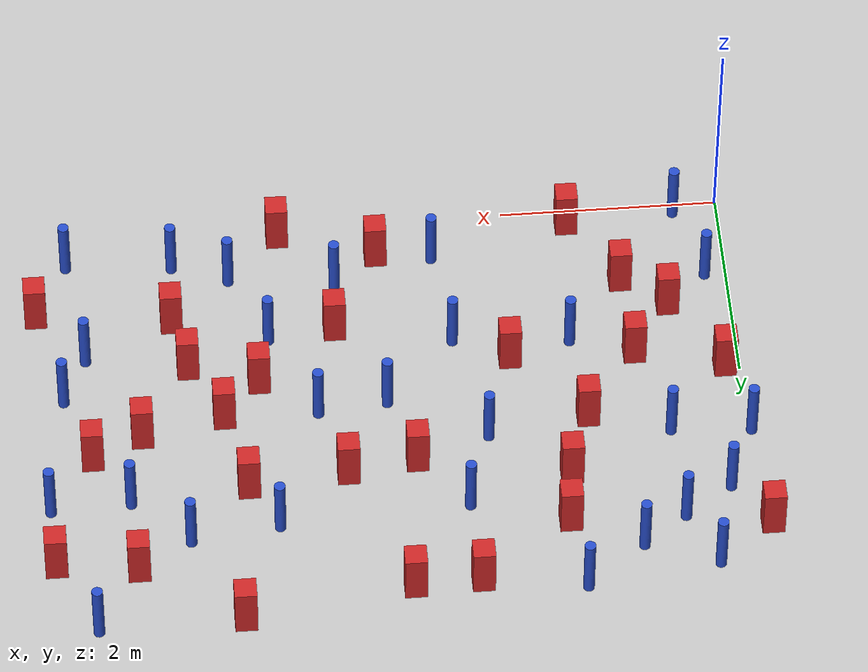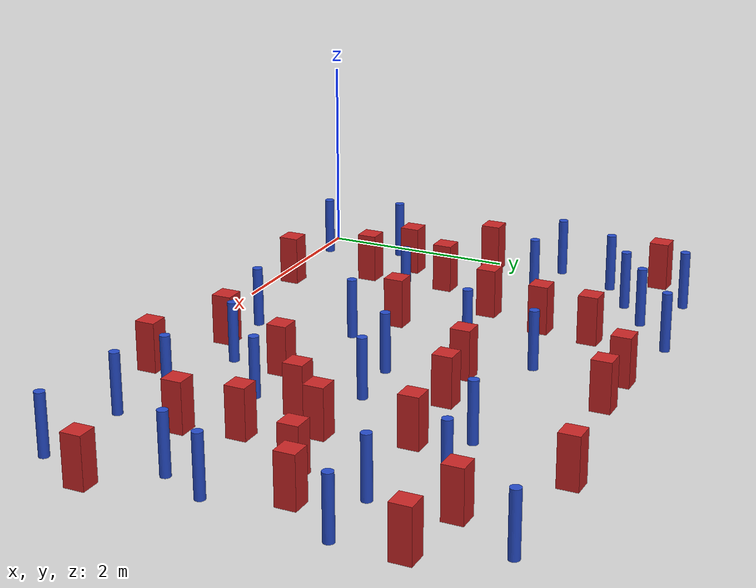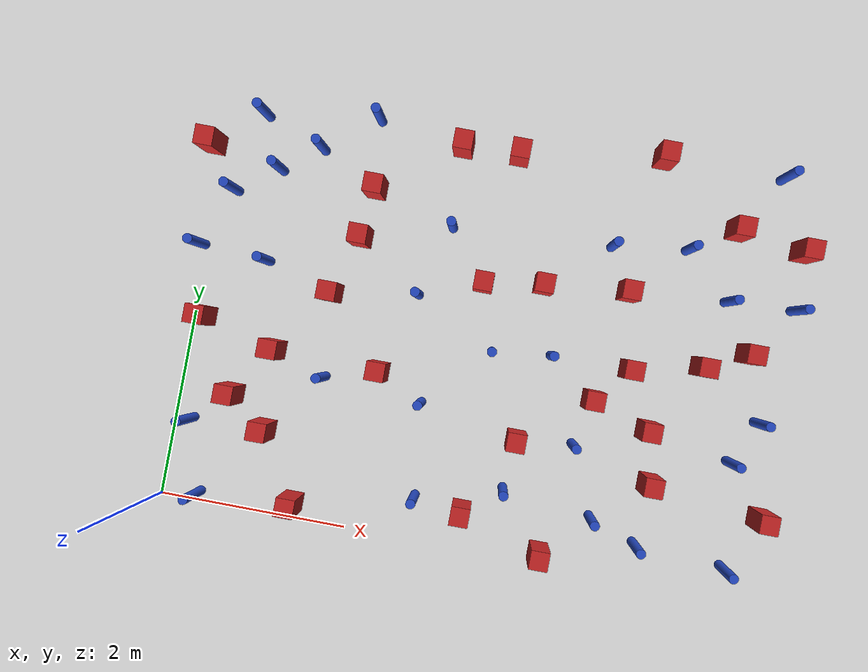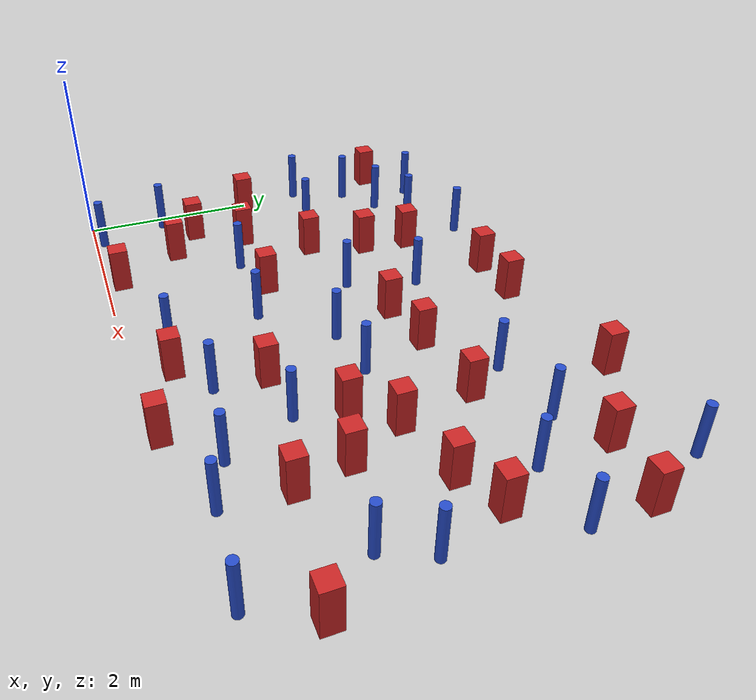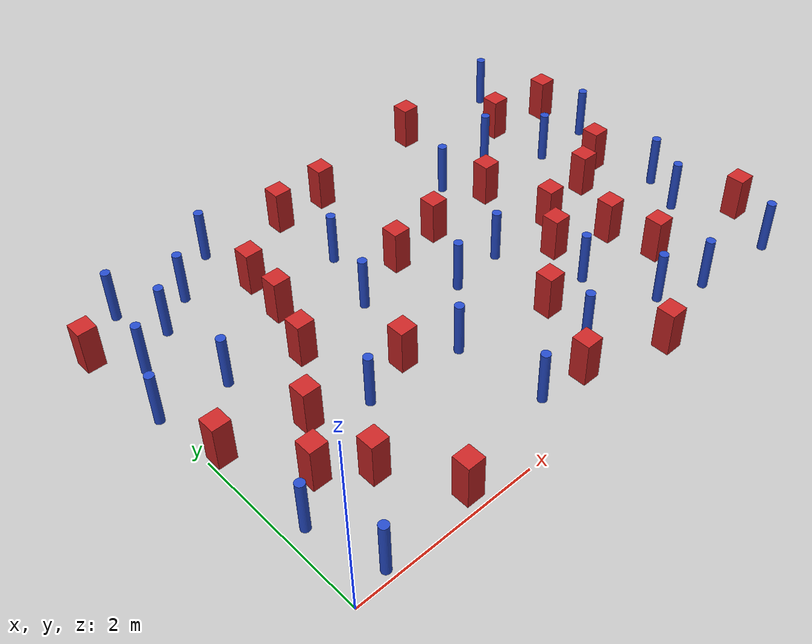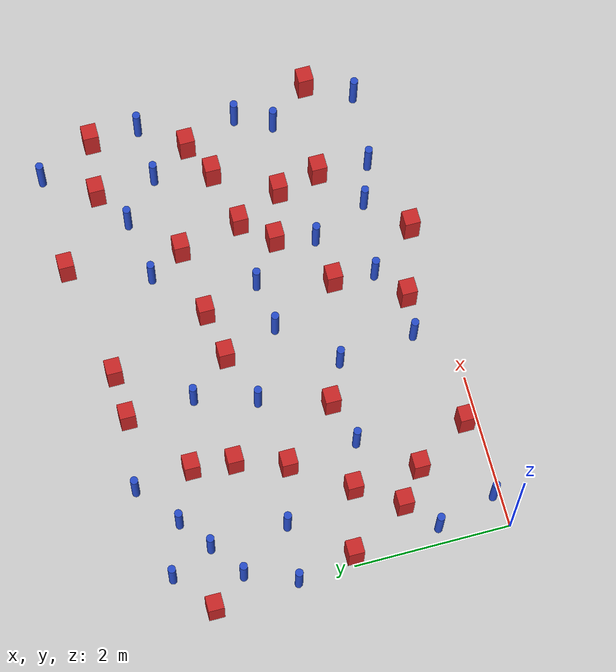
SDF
<sdf version="1.6">
 <model name="dense_89">
  <model name="pole_obstacle6">
   <static>true</static>
   <pose>3.60519064606 0.736603006341 2.88873142074e-08 -9.90536689285e-09 4.60219949002e-07 -1.20965994953e-07</pose>
   <link name="link">
    <pose>0 0 0.3 0 -0 0</pose>
    <inertial>
     <mass>1</mass>
     <inertia><ixx>0.145833</ixx><ixy>0</ixy><ixz>0</ixz><iyy>0.145833</iyy><iyz>0</iyz><izz>0.125</izz></inertia>
    </inertial>
    <collision name="collision">
     <geometry><cylinder><radius>0.05</radius><length>.6</length></cylinder></geometry>
    </collision>
    <visual name="visual">
     <geometry><cylinder><radius>0.05</radius><length>.6</length></cylinder></geometry>
     <material>
      <script><name>Gazebo/Blue</name><uri>file://media/materials/scripts/gazebo.material</uri></script>
     </material>
    </visual>
   </link>
  </model>
  <model name="pole_obstacle24">
   <static>true</static>
   <pose>5.08562448463 3.60974429058 2.88873142074e-08 -9.90536690245e-09 4.6021994898e-07 -1.20965994966e-07</pose>
   <link name="link">
    <pose>0 0 0.3 0 -0 0</pose>
    <inertial>
     <mass>1</mass>
     <inertia><ixx>0.145833</ixx><ixy>0</ixy><ixz>0</ixz><iyy>0.145833</iyy><iyz>0</iyz><izz>0.125</izz></inertia>
    </inertial>
    <collision name="collision">
     <geometry><cylinder><radius>0.05</radius><length>.6</length></cylinder></geometry>
    </collision>
    <visual name="visual">
     <geometry><cylinder><radius>0.05</radius><length>.6</length></cylinder></geometry>
     <material>
      <script><name>Gazebo/Blue</name><uri>file://media/materials/scripts/gazebo.material</uri></script>
     </material>
    </visual>
   </link>
  </model>
  <model name="pole_obstacle28">
   <static>true</static>
   <pose>4.28439598745 3.49828546201 2.88873142074e-08 -9.90536690245e-09 4.6021994898e-07 -1.20965994966e-07</pose>
   <link name="link">
    <pose>0 0 0.3 0 -0 0</pose>
    <inertial>
     <mass>1</mass>
     <inertia><ixx>0.145833</ixx><ixy>0</ixy><ixz>0</ixz><iyy>0.145833</iyy><iyz>0</iyz><izz>0.125</izz></inertia>
    </inertial>
    <collision name="collision">
     <geometry><cylinder><radius>0.05</radius><length>.6</length></cylinder></geometry>
    </collision>
    <visual name="visual">
     <geometry><cylinder><radius>0.05</radius><length>.6</length></cylinder></geometry>
     <material>
      <script><name>Gazebo/Blue</name><uri>file://media/materials/scripts/gazebo.material</uri></script>
     </material>
    </visual>
   </link>
  </model>
  <model name="square_post_obstacle19">
   <static>true</static>
   <pose>0.936425011638 1.75770642628 8.22691968438e-08 7.2212513382e-06 -7.54495500217e-07 2.29674213826e-05</pose>
   <link name="link">
    <pose>0 0 0.25 0 -0 0</pose>
    <inertial>
     <mass>100</mass>
     <inertia>
      <ixx>0.166667</ixx>
      <ixy>0</ixy>
      <ixz>0</ixz>
      <iyy>0.166667</iyy>
      <iyz>0</iyz>
      <izz>0.166667</izz>
     </inertia>
    </inertial>
    <collision name="collision"><geometry><box><size>.2 .2 .5</size></box></geometry></collision>
    <visual name="visual">
     <geometry><box><size>.2 .2 .5</size></box></geometry>
     <material>
      <script><name>Gazebo/Red</name><uri>file://media/materials/scripts/gazebo.material</uri></script>
     </material>
    </visual>
   </link>
  </model>
  <model name="square_post_obstacle26">
   <static>true</static>
   <pose>3.63503763821 2.95785120707 8.22691968438e-08 7.2212513382e-06 -7.54495500217e-07 2.29674213826e-05</pose>
   <link name="link">
    <pose>0 0 0.25 0 -0 0</pose>
    <inertial>
     <mass>100</mass>
     <inertia>
      <ixx>0.166667</ixx>
      <ixy>0</ixy>
      <ixz>0</ixz>
      <iyy>0.166667</iyy>
      <iyz>0</iyz>
      <izz>0.166667</izz>
     </inertia>
    </inertial>
    <collision name="collision"><geometry><box><size>.2 .2 .5</size></box></geometry></collision>
    <visual name="visual">
     <geometry><box><size>.2 .2 .5</size></box></geometry>
     <material>
      <script><name>Gazebo/Red</name><uri>file://media/materials/scripts/gazebo.material</uri></script>
     </material>
    </visual>
   </link>
  </model>
  <model name="square_post_obstacle28">
   <static>true</static>
   <pose>5.003298963 1.63625164232 8.22691968438e-08 7.2212513382e-06 -7.54495500217e-07 2.29674213826e-05</pose>
   <link name="link">
    <pose>0 0 0.25 0 -0 0</pose>
    <inertial>
     <mass>100</mass>
     <inertia>
      <ixx>0.166667</ixx>
      <ixy>0</ixy>
      <ixz>0</ixz>
      <iyy>0.166667</iyy>
      <iyz>0</iyz>
      <izz>0.166667</izz>
     </inertia>
    </inertial>
    <collision name="collision"><geometry><box><size>.2 .2 .5</size></box></geometry></collision>
    <visual name="visual">
     <geometry><box><size>.2 .2 .5</size></box></geometry>
     <material>
      <script><name>Gazebo/Red</name><uri>file://media/materials/scripts/gazebo.material</uri></script>
     </material>
    </visual>
   </link>
  </model>
  <model name="square_post_obstacle29">
   <static>true</static>
   <pose>0.985082252736 0.896909463291 8.22691968438e-08 7.2212513382e-06 -7.54495500217e-07 2.29674213826e-05</pose>
   <link name="link">
    <pose>0 0 0.25 0 -0 0</pose>
    <inertial>
     <mass>100</mass>
     <inertia>
      <ixx>0.166667</ixx>
      <ixy>0</ixy>
      <ixz>0</ixz>
      <iyy>0.166667</iyy>
      <iyz>0</iyz>
      <izz>0.166667</izz>
     </inertia>
    </inertial>
    <collision name="collision"><geometry><box><size>.2 .2 .5</size></box></geometry></collision>
    <visual name="visual">
     <geometry><box><size>.2 .2 .5</size></box></geometry>
     <material>
      <script><name>Gazebo/Red</name><uri>file://media/materials/scripts/gazebo.material</uri></script>
     </material>
    </visual>
   </link>
  </model>
  <model name="pole_obstacle36">
   <static>true</static>
   <pose>0.660144025657 3.65861136991 2.88873142074e-08 -9.90536689636e-09 4.60219948994e-07 -1.20965994958e-07</pose>
   <link name="link">
    <pose>0 0 0.3 0 -0 0</pose>
    <inertial>
     <mass>1</mass>
     <inertia><ixx>0.145833</ixx><ixy>0</ixy><ixz>0</ixz><iyy>0.145833</iyy><iyz>0</iyz><izz>0.125</izz></inertia>
    </inertial>
    <collision name="collision">
     <geometry><cylinder><radius>0.05</radius><length>.6</length></cylinder></geometry>
    </collision>
    <visual name="visual">
     <geometry><cylinder><radius>0.05</radius><length>.6</length></cylinder></geometry>
     <material>
      <script><name>Gazebo/Blue</name><uri>file://media/materials/scripts/gazebo.material</uri></script>
     </material>
    </visual>
   </link>
  </model>
  <model name="pole_obstacle39">
   <static>true</static>
   <pose>5.59773589964 3.13979027691 2.88873142074e-08 -9.90536690245e-09 4.6021994898e-07 -1.20965994966e-07</pose>
   <link name="link">
    <pose>0 0 0.3 0 -0 0</pose>
    <inertial>
     <mass>1</mass>
     <inertia><ixx>0.145833</ixx><ixy>0</ixy><ixz>0</ixz><iyy>0.145833</iyy><iyz>0</iyz><izz>0.125</izz></inertia>
    </inertial>
    <collision name="collision">
     <geometry><cylinder><radius>0.05</radius><length>.6</length></cylinder></geometry>
    </collision>
    <visual name="visual">
     <geometry><cylinder><radius>0.05</radius><length>.6</length></cylinder></geometry>
     <material>
      <script><name>Gazebo/Blue</name><uri>file://media/materials/scripts/gazebo.material</uri></script>
     </material>
    </visual>
   </link>
  </model>
  <model name="pole_obstacle45">
   <static>true</static>
   <pose>1.6062365775 4.37786400295 2.88873142074e-08 -9.90536689852e-09 4.60219948989e-07 -1.2096599496e-07</pose>
   <link name="link">
    <pose>0 0 0.3 0 -0 0</pose>
    <inertial>
     <mass>1</mass>
     <inertia><ixx>0.145833</ixx><ixy>0</ixy><ixz>0</ixz><iyy>0.145833</iyy><iyz>0</iyz><izz>0.125</izz></inertia>
    </inertial>
    <collision name="collision">
     <geometry><cylinder><radius>0.05</radius><length>.6</length></cylinder></geometry>
    </collision>
    <visual name="visual">
     <geometry><cylinder><radius>0.05</radius><length>.6</length></cylinder></geometry>
     <material>
      <script><name>Gazebo/Blue</name><uri>file://media/materials/scripts/gazebo.material</uri></script>
     </material>
    </visual>
   </link>
  </model>
  <model name="square_post_obstacle40">
   <static>true</static>
   <pose>4.70777016315 2.23714081134 8.22691968438e-08 7.2212513382e-06 -7.54495500217e-07 2.29674213826e-05</pose>
   <link name="link">
    <pose>0 0 0.25 0 -0 0</pose>
    <inertial>
     <mass>100</mass>
     <inertia>
      <ixx>0.166667</ixx>
      <ixy>0</ixy>
      <ixz>0</ixz>
      <iyy>0.166667</iyy>
      <iyz>0</iyz>
      <izz>0.166667</izz>
     </inertia>
    </inertial>
    <collision name="collision"><geometry><box><size>.2 .2 .5</size></box></geometry></collision>
    <visual name="visual">
     <geometry><box><size>.2 .2 .5</size></box></geometry>
     <material>
      <script><name>Gazebo/Red</name><uri>file://media/materials/scripts/gazebo.material</uri></script>
     </material>
    </visual>
   </link>
  </model>
  <model name="pole_obstacle58">
   <static>true</static>
   <pose>5.92919814433 1.45998157747 2.88873142074e-08 -9.90536689445e-09 4.60219948999e-07 -1.20965994956e-07</pose>
   <link name="link">
    <pose>0 0 0.3 0 -0 0</pose>
    <inertial>
     <mass>1</mass>
     <inertia><ixx>0.145833</ixx><ixy>0</ixy><ixz>0</ixz><iyy>0.145833</iyy><iyz>0</iyz><izz>0.125</izz></inertia>
    </inertial>
    <collision name="collision">
     <geometry><cylinder><radius>0.05</radius><length>.6</length></cylinder></geometry>
    </collision>
    <visual name="visual">
     <geometry><cylinder><radius>0.05</radius><length>.6</length></cylinder></geometry>
     <material>
      <script><name>Gazebo/Blue</name><uri>file://media/materials/scripts/gazebo.material</uri></script>
     </material>
    </visual>
   </link>
  </model>
  <model name="square_post_obstacle45">
   <static>true</static>
   <pose>4.65703033753 4.52559358497 8.22691968438e-08 7.2212513382e-06 -7.54495500217e-07 2.29674213826e-05</pose>
   <link name="link">
    <pose>0 0 0.25 0 -0 0</pose>
    <inertial>
     <mass>100</mass>
     <inertia>
      <ixx>0.166667</ixx>
      <ixy>0</ixy>
      <ixz>0</ixz>
      <iyy>0.166667</iyy>
      <iyz>0</iyz>
      <izz>0.166667</izz>
     </inertia>
    </inertial>
    <collision name="collision"><geometry><box><size>.2 .2 .5</size></box></geometry></collision>
    <visual name="visual">
     <geometry><box><size>.2 .2 .5</size></box></geometry>
     <material>
      <script><name>Gazebo/Red</name><uri>file://media/materials/scripts/gazebo.material</uri></script>
     </material>
    </visual>
   </link>
  </model>
  <model name="pole_obstacle61">
   <static>true</static>
   <pose>2.57173790364 3.38650035701 2.88873142074e-08 -9.90536690232e-09 4.6021994898e-07 -1.20965994968e-07</pose>
   <link name="link">
    <pose>0 0 0.3 0 -0 0</pose>
    <inertial>
     <mass>1</mass>
     <inertia><ixx>0.145833</ixx><ixy>0</ixy><ixz>0</ixz><iyy>0.145833</iyy><iyz>0</iyz><izz>0.125</izz></inertia>
    </inertial>
    <collision name="collision">
     <geometry><cylinder><radius>0.05</radius><length>.6</length></cylinder></geometry>
    </collision>
    <visual name="visual">
     <geometry><cylinder><radius>0.05</radius><length>.6</length></cylinder></geometry>
     <material>
      <script><name>Gazebo/Blue</name><uri>file://media/materials/scripts/gazebo.material</uri></script>
     </material>
    </visual>
   </link>
  </model>
  <model name="pole_obstacle69">
   <static>true</static>
   <pose>-0.0328800915591 2.72272971324 2.88873142074e-08 -9.90536692535e-09 4.60219948925e-07 -1.2096599499e-07</pose>
   <link name="link">
    <pose>0 0 0.3 0 -0 0</pose>
    <inertial>
     <mass>1</mass>
     <inertia><ixx>0.145833</ixx><ixy>0</ixy><ixz>0</ixz><iyy>0.145833</iyy><iyz>0</iyz><izz>0.125</izz></inertia>
    </inertial>
    <collision name="collision">
     <geometry><cylinder><radius>0.05</radius><length>.6</length></cylinder></geometry>
    </collision>
    <visual name="visual">
     <geometry><cylinder><radius>0.05</radius><length>.6</length></cylinder></geometry>
     <material>
      <script><name>Gazebo/Blue</name><uri>file://media/materials/scripts/gazebo.material</uri></script>
     </material>
    </visual>
   </link>
  </model>
  <model name="pole_obstacle75">
   <static>true</static>
   <pose>6.14746203454 1.92521920841 2.88873142074e-08 -9.90536689445e-09 4.60219948999e-07 -1.20965994956e-07</pose>
   <link name="link">
    <pose>0 0 0.3 0 -0 0</pose>
    <inertial>
     <mass>1</mass>
     <inertia><ixx>0.145833</ixx><ixy>0</ixy><ixz>0</ixz><iyy>0.145833</iyy><iyz>0</iyz><izz>0.125</izz></inertia>
    </inertial>
    <collision name="collision">
     <geometry><cylinder><radius>0.05</radius><length>.6</length></cylinder></geometry>
    </collision>
    <visual name="visual">
     <geometry><cylinder><radius>0.05</radius><length>.6</length></cylinder></geometry>
     <material>
      <script><name>Gazebo/Blue</name><uri>file://media/materials/scripts/gazebo.material</uri></script>
     </material>
    </visual>
   </link>
  </model>
  <model name="pole_obstacle82">
   <static>true</static>
   <pose>6.06059148059 0.338739686937 2.88873142074e-08 -9.90536689981e-09 4.60219948986e-07 -1.20965994962e-07</pose>
   <link name="link">
    <pose>0 0 0.3 0 -0 0</pose>
    <inertial>
     <mass>1</mass>
     <inertia><ixx>0.145833</ixx><ixy>0</ixy><ixz>0</ixz><iyy>0.145833</iyy><iyz>0</iyz><izz>0.125</izz></inertia>
    </inertial>
    <collision name="collision">
     <geometry><cylinder><radius>0.05</radius><length>.6</length></cylinder></geometry>
    </collision>
    <visual name="visual">
     <geometry><cylinder><radius>0.05</radius><length>.6</length></cylinder></geometry>
     <material>
      <script><name>Gazebo/Blue</name><uri>file://media/materials/scripts/gazebo.material</uri></script>
     </material>
    </visual>
   </link>
  </model>
  <model name="square_post_obstacle82">
   <static>true</static>
   <pose>3.00604380478 2.8595958126 8.22691968438e-08 7.2212513382e-06 -7.54495500217e-07 2.29674213826e-05</pose>
   <link name="link">
    <pose>0 0 0.25 0 -0 0</pose>
    <inertial>
     <mass>100</mass>
     <inertia>
      <ixx>0.166667</ixx>
      <ixy>0</ixy>
      <ixz>0</ixz>
      <iyy>0.166667</iyy>
      <iyz>0</iyz>
      <izz>0.166667</izz>
     </inertia>
    </inertial>
    <collision name="collision"><geometry><box><size>.2 .2 .5</size></box></geometry></collision>
    <visual name="visual">
     <geometry><box><size>.2 .2 .5</size></box></geometry>
     <material>
      <script><name>Gazebo/Red</name><uri>file://media/materials/scripts/gazebo.material</uri></script>
     </material>
    </visual>
   </link>
  </model>
  <model name="pole_obstacle93">
   <static>true</static>
   <pose>0.192687869194 0.868994095143 2.88873142074e-08 -9.90536690341e-09 4.60219948977e-07 -1.20965994968e-07</pose>
   <link name="link">
    <pose>0 0 0.3 0 -0 0</pose>
    <inertial>
     <mass>1</mass>
     <inertia><ixx>0.145833</ixx><ixy>0</ixy><ixz>0</ixz><iyy>0.145833</iyy><iyz>0</iyz><izz>0.125</izz></inertia>
    </inertial>
    <collision name="collision">
     <geometry><cylinder><radius>0.05</radius><length>.6</length></cylinder></geometry>
    </collision>
    <visual name="visual">
     <geometry><cylinder><radius>0.05</radius><length>.6</length></cylinder></geometry>
     <material>
      <script><name>Gazebo/Blue</name><uri>file://media/materials/scripts/gazebo.material</uri></script>
     </material>
    </visual>
   </link>
  </model>
  <model name="pole_obstacle101">
   <static>true</static>
   <pose>1.5087841471 1.5622347193 2.88873142074e-08 -9.90536689672e-09 4.60219948993e-07 -1.20965994959e-07</pose>
   <link name="link">
    <pose>0 0 0.3 0 -0 0</pose>
    <inertial>
     <mass>1</mass>
     <inertia><ixx>0.145833</ixx><ixy>0</ixy><ixz>0</ixz><iyy>0.145833</iyy><iyz>0</iyz><izz>0.125</izz></inertia>
    </inertial>
    <collision name="collision">
     <geometry><cylinder><radius>0.05</radius><length>.6</length></cylinder></geometry>
    </collision>
    <visual name="visual">
     <geometry><cylinder><radius>0.05</radius><length>.6</length></cylinder></geometry>
     <material>
      <script><name>Gazebo/Blue</name><uri>file://media/materials/scripts/gazebo.material</uri></script>
     </material>
    </visual>
   </link>
  </model>
  <model name="square_post_obstacle97">
   <static>true</static>
   <pose>1.41581463398 0.179686824386 8.22691968438e-08 7.2212513382e-06 -7.54495500217e-07 2.29674213826e-05</pose>
   <link name="link">
    <pose>0 0 0.25 0 -0 0</pose>
    <inertial>
     <mass>100</mass>
     <inertia>
      <ixx>0.166667</ixx>
      <ixy>0</ixy>
      <ixz>0</ixz>
      <iyy>0.166667</iyy>
      <iyz>0</iyz>
      <izz>0.166667</izz>
     </inertia>
    </inertial>
    <collision name="collision"><geometry><box><size>.2 .2 .5</size></box></geometry></collision>
    <visual name="visual">
     <geometry><box><size>.2 .2 .5</size></box></geometry>
     <material>
      <script><name>Gazebo/Red</name><uri>file://media/materials/scripts/gazebo.material</uri></script>
     </material>
    </visual>
   </link>
  </model>
  <model name="square_post_obstacle104">
   <static>true</static>
   <pose>1.63500351227 3.10330486196 8.22691968438e-08 7.2212513382e-06 -7.54495500217e-07 2.29674213826e-05</pose>
   <link name="link">
    <pose>0 0 0.25 0 -0 0</pose>
    <inertial>
     <mass>100</mass>
     <inertia>
      <ixx>0.166667</ixx>
      <ixy>0</ixy>
      <ixz>0</ixz>
      <iyy>0.166667</iyy>
      <iyz>0</iyz>
      <izz>0.166667</izz>
     </inertia>
    </inertial>
    <collision name="collision"><geometry><box><size>.2 .2 .5</size></box></geometry></collision>
    <visual name="visual">
     <geometry><box><size>.2 .2 .5</size></box></geometry>
     <material>
      <script><name>Gazebo/Red</name><uri>file://media/materials/scripts/gazebo.material</uri></script>
     </material>
    </visual>
   </link>
  </model>
  <model name="square_post_obstacle105">
   <static>true</static>
   <pose>2.53308196435 4.25347665867 8.22691968438e-08 7.2212513382e-06 -7.54495500217e-07 2.29674213826e-05</pose>
   <link name="link">
    <pose>0 0 0.25 0 -0 0</pose>
    <inertial>
     <mass>100</mass>
     <inertia>
      <ixx>0.166667</ixx>
      <ixy>0</ixy>
      <ixz>0</ixz>
      <iyy>0.166667</iyy>
      <iyz>0</iyz>
      <izz>0.166667</izz>
     </inertia>
    </inertial>
    <collision name="collision"><geometry><box><size>.2 .2 .5</size></box></geometry></collision>
    <visual name="visual">
     <geometry><box><size>.2 .2 .5</size></box></geometry>
     <material>
      <script><name>Gazebo/Red</name><uri>file://media/materials/scripts/gazebo.material</uri></script>
     </material>
    </visual>
   </link>
  </model>
  <model name="square_post_obstacle107">
   <static>true</static>
   <pose>3.20530987433 0.423398128547 8.22691968438e-08 7.2212513382e-06 -7.54495500217e-07 2.29674213826e-05</pose>
   <link name="link">
    <pose>0 0 0.25 0 -0 0</pose>
    <inertial>
     <mass>100</mass>
     <inertia>
      <ixx>0.166667</ixx>
      <ixy>0</ixy>
      <ixz>0</ixz>
      <iyy>0.166667</iyy>
      <iyz>0</iyz>
      <izz>0.166667</izz>
     </inertia>
    </inertial>
    <collision name="collision"><geometry><box><size>.2 .2 .5</size></box></geometry></collision>
    <visual name="visual">
     <geometry><box><size>.2 .2 .5</size></box></geometry>
     <material>
      <script><name>Gazebo/Red</name><uri>file://media/materials/scripts/gazebo.material</uri></script>
     </material>
    </visual>
   </link>
  </model>
  <model name="pole_obstacle113">
   <static>true</static>
   <pose>3.85451385964 2.22927541365 2.88873142074e-08 -9.90536690232e-09 4.6021994898e-07 -1.20965994968e-07</pose>
   <link name="link">
    <pose>0 0 0.3 0 -0 0</pose>
    <inertial>
     <mass>1</mass>
     <inertia><ixx>0.145833</ixx><ixy>0</ixy><ixz>0</ixz><iyy>0.145833</iyy><iyz>0</iyz><izz>0.125</izz></inertia>
    </inertial>
    <collision name="collision">
     <geometry><cylinder><radius>0.05</radius><length>.6</length></cylinder></geometry>
    </collision>
    <visual name="visual">
     <geometry><cylinder><radius>0.05</radius><length>.6</length></cylinder></geometry>
     <material>
      <script><name>Gazebo/Blue</name><uri>file://media/materials/scripts/gazebo.material</uri></script>
     </material>
    </visual>
   </link>
  </model>
  <model name="square_post_obstacle113">
   <static>true</static>
   <pose>2.07433042967 1.73295867308 8.22691968438e-08 7.2212513382e-06 -7.54495500217e-07 2.29674213826e-05</pose>
   <link name="link">
    <pose>0 0 0.25 0 -0 0</pose>
    <inertial>
     <mass>100</mass>
     <inertia>
      <ixx>0.166667</ixx>
      <ixy>0</ixy>
      <ixz>0</ixz>
      <iyy>0.166667</iyy>
      <iyz>0</iyz>
      <izz>0.166667</izz>
     </inertia>
    </inertial>
    <collision name="collision"><geometry><box><size>.2 .2 .5</size></box></geometry></collision>
    <visual name="visual">
     <geometry><box><size>.2 .2 .5</size></box></geometry>
     <material>
      <script><name>Gazebo/Red</name><uri>file://media/materials/scripts/gazebo.material</uri></script>
     </material>
    </visual>
   </link>
  </model>
  <model name="square_post_obstacle118">
   <static>true</static>
   <pose>5.56519952009 3.90966847611 8.22691968438e-08 7.2212513382e-06 -7.54495500217e-07 2.29674213826e-05</pose>
   <link name="link">
    <pose>0 0 0.25 0 -0 0</pose>
    <inertial>
     <mass>100</mass>
     <inertia>
      <ixx>0.166667</ixx>
      <ixy>0</ixy>
      <ixz>0</ixz>
      <iyy>0.166667</iyy>
      <iyz>0</iyz>
      <izz>0.166667</izz>
     </inertia>
    </inertial>
    <collision name="collision"><geometry><box><size>.2 .2 .5</size></box></geometry></collision>
    <visual name="visual">
     <geometry><box><size>.2 .2 .5</size></box></geometry>
     <material>
      <script><name>Gazebo/Red</name><uri>file://media/materials/scripts/gazebo.material</uri></script>
     </material>
    </visual>
   </link>
  </model>
  <model name="square_post_obstacle121">
   <static>true</static>
   <pose>0.577831267998 1.21331056739 8.22691968438e-08 7.2212513382e-06 -7.54495500217e-07 2.29674213826e-05</pose>
   <link name="link">
    <pose>0 0 0.25 0 -0 0</pose>
    <inertial>
     <mass>100</mass>
     <inertia>
      <ixx>0.166667</ixx>
      <ixy>0</ixy>
      <ixz>0</ixz>
      <iyy>0.166667</iyy>
      <iyz>0</iyz>
      <izz>0.166667</izz>
     </inertia>
    </inertial>
    <collision name="collision"><geometry><box><size>.2 .2 .5</size></box></geometry></collision>
    <visual name="visual">
     <geometry><box><size>.2 .2 .5</size></box></geometry>
     <material>
      <script><name>Gazebo/Red</name><uri>file://media/materials/scripts/gazebo.material</uri></script>
     </material>
    </visual>
   </link>
  </model>
  <model name="pole_obstacle122">
   <static>true</static>
   <pose>4.25042388028 1.34007896724 2.88873142074e-08 -9.90536689445e-09 4.60219948999e-07 -1.20965994956e-07</pose>
   <link name="link">
    <pose>0 0 0.3 0 -0 0</pose>
    <inertial>
     <mass>1</mass>
     <inertia><ixx>0.145833</ixx><ixy>0</ixy><ixz>0</ixz><iyy>0.145833</iyy><iyz>0</iyz><izz>0.125</izz></inertia>
    </inertial>
    <collision name="collision">
     <geometry><cylinder><radius>0.05</radius><length>.6</length></cylinder></geometry>
    </collision>
    <visual name="visual">
     <geometry><cylinder><radius>0.05</radius><length>.6</length></cylinder></geometry>
     <material>
      <script><name>Gazebo/Blue</name><uri>file://media/materials/scripts/gazebo.material</uri></script>
     </material>
    </visual>
   </link>
  </model>
  <model name="pole_obstacle125">
   <static>true</static>
   <pose>2.57698035668 1.48035058824 2.88873142074e-08 -9.90536689395e-09 4.60219949e-07 -1.20965994953e-07</pose>
   <link name="link">
    <pose>0 0 0.3 0 -0 0</pose>
    <inertial>
     <mass>1</mass>
     <inertia><ixx>0.145833</ixx><ixy>0</ixy><ixz>0</ixz><iyy>0.145833</iyy><iyz>0</iyz><izz>0.125</izz></inertia>
    </inertial>
    <collision name="collision">
     <geometry><cylinder><radius>0.05</radius><length>.6</length></cylinder></geometry>
    </collision>
    <visual name="visual">
     <geometry><cylinder><radius>0.05</radius><length>.6</length></cylinder></geometry>
     <material>
      <script><name>Gazebo/Blue</name><uri>file://media/materials/scripts/gazebo.material</uri></script>
     </material>
    </visual>
   </link>
  </model>
  <model name="pole_obstacle126">
   <static>true</static>
   <pose>5.08772715777 0.414674503026 2.88873142074e-08 -9.90536689981e-09 4.60219948986e-07 -1.20965994962e-07</pose>
   <link name="link">
    <pose>0 0 0.3 0 -0 0</pose>
    <inertial>
     <mass>1</mass>
     <inertia><ixx>0.145833</ixx><ixy>0</ixy><ixz>0</ixz><iyy>0.145833</iyy><iyz>0</iyz><izz>0.125</izz></inertia>
    </inertial>
    <collision name="collision">
     <geometry><cylinder><radius>0.05</radius><length>.6</length></cylinder></geometry>
    </collision>
    <visual name="visual">
     <geometry><cylinder><radius>0.05</radius><length>.6</length></cylinder></geometry>
     <material>
      <script><name>Gazebo/Blue</name><uri>file://media/materials/scripts/gazebo.material</uri></script>
     </material>
    </visual>
   </link>
  </model>
  <model name="square_post_obstacle126">
   <static>true</static>
   <pose>5.12427239771 1.07957800826 8.22691968438e-08 7.2212513382e-06 -7.54495500217e-07 2.29674213826e-05</pose>
   <link name="link">
    <pose>0 0 0.25 0 -0 0</pose>
    <inertial>
     <mass>100</mass>
     <inertia>
      <ixx>0.166667</ixx>
      <ixy>0</ixy>
      <ixz>0</ixz>
      <iyy>0.166667</iyy>
      <iyz>0</iyz>
      <izz>0.166667</izz>
     </inertia>
    </inertial>
    <collision name="collision"><geometry><box><size>.2 .2 .5</size></box></geometry></collision>
    <visual name="visual">
     <geometry><box><size>.2 .2 .5</size></box></geometry>
     <material>
      <script><name>Gazebo/Red</name><uri>file://media/materials/scripts/gazebo.material</uri></script>
     </material>
    </visual>
   </link>
  </model>
  <model name="square_post_obstacle127">
   <static>true</static>
   <pose>6.36009892333 0.924572274981 8.22691968438e-08 7.2212513382e-06 -7.54495500217e-07 2.29674213826e-05</pose>
   <link name="link">
    <pose>0 0 0.25 0 -0 0</pose>
    <inertial>
     <mass>100</mass>
     <inertia>
      <ixx>0.166667</ixx>
      <ixy>0</ixy>
      <ixz>0</ixz>
      <iyy>0.166667</iyy>
      <iyz>0</iyz>
      <izz>0.166667</izz>
     </inertia>
    </inertial>
    <collision name="collision"><geometry><box><size>.2 .2 .5</size></box></geometry></collision>
    <visual name="visual">
     <geometry><box><size>.2 .2 .5</size></box></geometry>
     <material>
      <script><name>Gazebo/Red</name><uri>file://media/materials/scripts/gazebo.material</uri></script>
     </material>
    </visual>
   </link>
  </model>
  <model name="square_post_obstacle133">
   <static>true</static>
   <pose>4.53484420774 3.05019987005 8.22691968438e-08 7.2212513382e-06 -7.54495500217e-07 2.29674213826e-05</pose>
   <link name="link">
    <pose>0 0 0.25 0 -0 0</pose>
    <inertial>
     <mass>100</mass>
     <inertia>
      <ixx>0.166667</ixx>
      <ixy>0</ixy>
      <ixz>0</ixz>
      <iyy>0.166667</iyy>
      <iyz>0</iyz>
      <izz>0.166667</izz>
     </inertia>
    </inertial>
    <collision name="collision"><geometry><box><size>.2 .2 .5</size></box></geometry></collision>
    <visual name="visual">
     <geometry><box><size>.2 .2 .5</size></box></geometry>
     <material>
      <script><name>Gazebo/Red</name><uri>file://media/materials/scripts/gazebo.material</uri></script>
     </material>
    </visual>
   </link>
  </model>
  <model name="pole_obstacle145">
   <static>true</static>
   <pose>0.221304937407 3.35469868747 2.88873142074e-08 -9.90536692545e-09 4.60219948925e-07 -1.2096599499e-07</pose>
   <link name="link">
    <pose>0 0 0.3 0 -0 0</pose>
    <inertial>
     <mass>1</mass>
     <inertia><ixx>0.145833</ixx><ixy>0</ixy><ixz>0</ixz><iyy>0.145833</iyy><iyz>0</iyz><izz>0.125</izz></inertia>
    </inertial>
    <collision name="collision">
     <geometry><cylinder><radius>0.05</radius><length>.6</length></cylinder></geometry>
    </collision>
    <visual name="visual">
     <geometry><cylinder><radius>0.05</radius><length>.6</length></cylinder></geometry>
     <material>
      <script><name>Gazebo/Blue</name><uri>file://media/materials/scripts/gazebo.material</uri></script>
     </material>
    </visual>
   </link>
  </model>
  <model name="pole_obstacle149">
   <static>true</static>
   <pose>5.95348957436 4.54256101679 2.88873142074e-08 -9.90536690842e-09 4.60219948965e-07 -1.20965994976e-07</pose>
   <link name="link">
    <pose>0 0 0.3 0 -0 0</pose>
    <inertial>
     <mass>1</mass>
     <inertia><ixx>0.145833</ixx><ixy>0</ixy><ixz>0</ixz><iyy>0.145833</iyy><iyz>0</iyz><izz>0.125</izz></inertia>
    </inertial>
    <collision name="collision">
     <geometry><cylinder><radius>0.05</radius><length>.6</length></cylinder></geometry>
    </collision>
    <visual name="visual">
     <geometry><cylinder><radius>0.05</radius><length>.6</length></cylinder></geometry>
     <material>
      <script><name>Gazebo/Blue</name><uri>file://media/materials/scripts/gazebo.material</uri></script>
     </material>
    </visual>
   </link>
  </model>
  <model name="pole_obstacle150">
   <static>true</static>
   <pose>2.34034649585 2.61218084126 2.88873142074e-08 -9.90536690232e-09 4.6021994898e-07 -1.20965994968e-07</pose>
   <link name="link">
    <pose>0 0 0.3 0 -0 0</pose>
    <inertial>
     <mass>1</mass>
     <inertia><ixx>0.145833</ixx><ixy>0</ixy><ixz>0</ixz><iyy>0.145833</iyy><iyz>0</iyz><izz>0.125</izz></inertia>
    </inertial>
    <collision name="collision">
     <geometry><cylinder><radius>0.05</radius><length>.6</length></cylinder></geometry>
    </collision>
    <visual name="visual">
     <geometry><cylinder><radius>0.05</radius><length>.6</length></cylinder></geometry>
     <material>
      <script><name>Gazebo/Blue</name><uri>file://media/materials/scripts/gazebo.material</uri></script>
     </material>
    </visual>
   </link>
  </model>
  <model name="square_post_obstacle149">
   <static>true</static>
   <pose>1.42846910395 2.4637830657 8.22691968438e-08 7.2212513382e-06 -7.54495500217e-07 2.29674213826e-05</pose>
   <link name="link">
    <pose>0 0 0.25 0 -0 0</pose>
    <inertial>
     <mass>100</mass>
     <inertia>
      <ixx>0.166667</ixx>
      <ixy>0</ixy>
      <ixz>0</ixz>
      <iyy>0.166667</iyy>
      <iyz>0</iyz>
      <izz>0.166667</izz>
     </inertia>
    </inertial>
    <collision name="collision"><geometry><box><size>.2 .2 .5</size></box></geometry></collision>
    <visual name="visual">
     <geometry><box><size>.2 .2 .5</size></box></geometry>
     <material>
      <script><name>Gazebo/Red</name><uri>file://media/materials/scripts/gazebo.material</uri></script>
     </material>
    </visual>
   </link>
  </model>
  <model name="pole_obstacle153">
   <static>true</static>
   <pose>0.692997042975 2.67274100265 2.88873142074e-08 -9.90536689636e-09 4.60219948994e-07 -1.20965994958e-07</pose>
   <link name="link">
    <pose>0 0 0.3 0 -0 0</pose>
    <inertial>
     <mass>1</mass>
     <inertia><ixx>0.145833</ixx><ixy>0</ixy><ixz>0</ixz><iyy>0.145833</iyy><iyz>0</iyz><izz>0.125</izz></inertia>
    </inertial>
    <collision name="collision">
     <geometry><cylinder><radius>0.05</radius><length>.6</length></cylinder></geometry>
    </collision>
    <visual name="visual">
     <geometry><cylinder><radius>0.05</radius><length>.6</length></cylinder></geometry>
     <material>
      <script><name>Gazebo/Blue</name><uri>file://media/materials/scripts/gazebo.material</uri></script>
     </material>
    </visual>
   </link>
  </model>
  <model name="square_post_obstacle163">
   <static>true</static>
   <pose>1.69636079329 3.64239355805 8.22691968438e-08 7.2212513382e-06 -7.54495500217e-07 2.29674213826e-05</pose>
   <link name="link">
    <pose>0 0 0.25 0 -0 0</pose>
    <inertial>
     <mass>100</mass>
     <inertia>
      <ixx>0.166667</ixx>
      <ixy>0</ixy>
      <ixz>0</ixz>
      <iyy>0.166667</iyy>
      <iyz>0</iyz>
      <izz>0.166667</izz>
     </inertia>
    </inertial>
    <collision name="collision"><geometry><box><size>.2 .2 .5</size></box></geometry></collision>
    <visual name="visual">
     <geometry><box><size>.2 .2 .5</size></box></geometry>
     <material>
      <script><name>Gazebo/Red</name><uri>file://media/materials/scripts/gazebo.material</uri></script>
     </material>
    </visual>
   </link>
  </model>
  <model name="pole_obstacle166">
   <static>true</static>
   <pose>3.22345594826 2.15547379451 2.88873142074e-08 -9.90536690232e-09 4.6021994898e-07 -1.20965994968e-07</pose>
   <link name="link">
    <pose>0 0 0.3 0 -0 0</pose>
    <inertial>
     <mass>1</mass>
     <inertia><ixx>0.145833</ixx><ixy>0</ixy><ixz>0</ixz><iyy>0.145833</iyy><iyz>0</iyz><izz>0.125</izz></inertia>
    </inertial>
    <collision name="collision">
     <geometry><cylinder><radius>0.05</radius><length>.6</length></cylinder></geometry>
    </collision>
    <visual name="visual">
     <geometry><cylinder><radius>0.05</radius><length>.6</length></cylinder></geometry>
     <material>
      <script><name>Gazebo/Blue</name><uri>file://media/materials/scripts/gazebo.material</uri></script>
     </material>
    </visual>
   </link>
  </model>
  <model name="square_post_obstacle164">
   <static>true</static>
   <pose>3.64274571235 1.27791009696 8.22691968438e-08 7.2212513382e-06 -7.54495500217e-07 2.29674213826e-05</pose>
   <link name="link">
    <pose>0 0 0.25 0 -0 0</pose>
    <inertial>
     <mass>100</mass>
     <inertia>
      <ixx>0.166667</ixx>
      <ixy>0</ixy>
      <ixz>0</ixz>
      <iyy>0.166667</iyy>
      <iyz>0</iyz>
      <izz>0.166667</izz>
     </inertia>
    </inertial>
    <collision name="collision"><geometry><box><size>.2 .2 .5</size></box></geometry></collision>
    <visual name="visual">
     <geometry><box><size>.2 .2 .5</size></box></geometry>
     <material>
      <script><name>Gazebo/Red</name><uri>file://media/materials/scripts/gazebo.material</uri></script>
     </material>
    </visual>
   </link>
  </model>
  <model name="square_post_obstacle168">
   <static>true</static>
   <pose>3.13697117188 4.27471657675 8.22691968438e-08 7.2212513382e-06 -7.54495500217e-07 2.29674213826e-05</pose>
   <link name="link">
    <pose>0 0 0.25 0 -0 0</pose>
    <inertial>
     <mass>100</mass>
     <inertia>
      <ixx>0.166667</ixx>
      <ixy>0</ixy>
      <ixz>0</ixz>
      <iyy>0.166667</iyy>
      <iyz>0</iyz>
      <izz>0.166667</izz>
     </inertia>
    </inertial>
    <collision name="collision"><geometry><box><size>.2 .2 .5</size></box></geometry></collision>
    <visual name="visual">
     <geometry><box><size>.2 .2 .5</size></box></geometry>
     <material>
      <script><name>Gazebo/Red</name><uri>file://media/materials/scripts/gazebo.material</uri></script>
     </material>
    </visual>
   </link>
  </model>
  <model name="square_post_obstacle172">
   <static>true</static>
   <pose>4.09650303265 0.130672828662 8.22691968438e-08 7.2212513382e-06 -7.54495500217e-07 2.29674213826e-05</pose>
   <link name="link">
    <pose>0 0 0.25 0 -0 0</pose>
    <inertial>
     <mass>100</mass>
     <inertia>
      <ixx>0.166667</ixx>
      <ixy>0</ixy>
      <ixz>0</ixz>
      <iyy>0.166667</iyy>
      <iyz>0</iyz>
      <izz>0.166667</izz>
     </inertia>
    </inertial>
    <collision name="collision"><geometry><box><size>.2 .2 .5</size></box></geometry></collision>
    <visual name="visual">
     <geometry><box><size>.2 .2 .5</size></box></geometry>
     <material>
      <script><name>Gazebo/Red</name><uri>file://media/materials/scripts/gazebo.material</uri></script>
     </material>
    </visual>
   </link>
  </model>
  <model name="pole_obstacle177">
   <static>true</static>
   <pose>1.06390089894 3.95582429751 2.88873142074e-08 -9.90536689669e-09 4.60219948993e-07 -1.2096599496e-07</pose>
   <link name="link">
    <pose>0 0 0.3 0 -0 0</pose>
    <inertial>
     <mass>1</mass>
     <inertia><ixx>0.145833</ixx><ixy>0</ixy><ixz>0</ixz><iyy>0.145833</iyy><iyz>0</iyz><izz>0.125</izz></inertia>
    </inertial>
    <collision name="collision">
     <geometry><cylinder><radius>0.05</radius><length>.6</length></cylinder></geometry>
    </collision>
    <visual name="visual">
     <geometry><cylinder><radius>0.05</radius><length>.6</length></cylinder></geometry>
     <material>
      <script><name>Gazebo/Blue</name><uri>file://media/materials/scripts/gazebo.material</uri></script>
     </material>
    </visual>
   </link>
  </model>
  <model name="pole_obstacle179">
   <static>true</static>
   <pose>0.408883352147 4.20590391549 2.88873142074e-08 -9.90536689683e-09 4.60219948993e-07 -1.20965994957e-07</pose>
   <link name="link">
    <pose>0 0 0.3 0 -0 0</pose>
    <inertial>
     <mass>1</mass>
     <inertia><ixx>0.145833</ixx><ixy>0</ixy><ixz>0</ixz><iyy>0.145833</iyy><iyz>0</iyz><izz>0.125</izz></inertia>
    </inertial>
    <collision name="collision">
     <geometry><cylinder><radius>0.05</radius><length>.6</length></cylinder></geometry>
    </collision>
    <visual name="visual">
     <geometry><cylinder><radius>0.05</radius><length>.6</length></cylinder></geometry>
     <material>
      <script><name>Gazebo/Blue</name><uri>file://media/materials/scripts/gazebo.material</uri></script>
     </material>
    </visual>
   </link>
  </model>
  <model name="square_post_obstacle196">
   <static>true</static>
   <pose>5.9165622772 2.62771921789 8.22691968438e-08 7.2212513382e-06 -7.54495500217e-07 2.29674213826e-05</pose>
   <link name="link">
    <pose>0 0 0.25 0 -0 0</pose>
    <inertial>
     <mass>100</mass>
     <inertia>
      <ixx>0.166667</ixx>
      <ixy>0</ixy>
      <ixz>0</ixz>
      <iyy>0.166667</iyy>
      <iyz>0</iyz>
      <izz>0.166667</izz>
     </inertia>
    </inertial>
    <collision name="collision"><geometry><box><size>.2 .2 .5</size></box></geometry></collision>
    <visual name="visual">
     <geometry><box><size>.2 .2 .5</size></box></geometry>
     <material>
      <script><name>Gazebo/Red</name><uri>file://media/materials/scripts/gazebo.material</uri></script>
     </material>
    </visual>
   </link>
  </model>
  <model name="pole_obstacle192">
   <static>true</static>
   <pose>2.69076562184 0.483588239248 2.88873142074e-08 -9.90536689151e-09 4.60219949006e-07 -1.20965994951e-07</pose>
   <link name="link">
    <pose>0 0 0.3 0 -0 0</pose>
    <inertial>
     <mass>1</mass>
     <inertia><ixx>0.145833</ixx><ixy>0</ixy><ixz>0</ixz><iyy>0.145833</iyy><iyz>0</iyz><izz>0.125</izz></inertia>
    </inertial>
    <collision name="collision">
     <geometry><cylinder><radius>0.05</radius><length>.6</length></cylinder></geometry>
    </collision>
    <visual name="visual">
     <geometry><cylinder><radius>0.05</radius><length>.6</length></cylinder></geometry>
     <material>
      <script><name>Gazebo/Blue</name><uri>file://media/materials/scripts/gazebo.material</uri></script>
     </material>
    </visual>
   </link>
  </model>
  <model name="pole_obstacle209">
   <static>true</static>
   <pose>4.5745432256 0.608315319689 2.88873142074e-08 -9.90536689837e-09 4.60219948989e-07 -1.2096599496e-07</pose>
   <link name="link">
    <pose>0 0 0.3 0 -0 0</pose>
    <inertial>
     <mass>1</mass>
     <inertia><ixx>0.145833</ixx><ixy>0</ixy><ixz>0</ixz><iyy>0.145833</iyy><iyz>0</iyz><izz>0.125</izz></inertia>
    </inertial>
    <collision name="collision">
     <geometry><cylinder><radius>0.05</radius><length>.6</length></cylinder></geometry>
    </collision>
    <visual name="visual">
     <geometry><cylinder><radius>0.05</radius><length>.6</length></cylinder></geometry>
     <material>
      <script><name>Gazebo/Blue</name><uri>file://media/materials/scripts/gazebo.material</uri></script>
     </material>
    </visual>
   </link>
  </model>
  <model name="pole_obstacle210">
   <static>true</static>
   <pose>6.31878584774 3.1759435955 2.88873142074e-08 -9.90536690245e-09 4.6021994898e-07 -1.20965994966e-07</pose>
   <link name="link">
    <pose>0 0 0.3 0 -0 0</pose>
    <inertial>
     <mass>1</mass>
     <inertia><ixx>0.145833</ixx><ixy>0</ixy><ixz>0</ixz><iyy>0.145833</iyy><iyz>0</iyz><izz>0.125</izz></inertia>
    </inertial>
    <collision name="collision">
     <geometry><cylinder><radius>0.05</radius><length>.6</length></cylinder></geometry>
    </collision>
    <visual name="visual">
     <geometry><cylinder><radius>0.05</radius><length>.6</length></cylinder></geometry>
     <material>
      <script><name>Gazebo/Blue</name><uri>file://media/materials/scripts/gazebo.material</uri></script>
     </material>
    </visual>
   </link>
  </model>
  <model name="square_post_obstacle211">
   <static>true</static>
   <pose>6.29547298536 3.80875391627 8.22691968438e-08 7.2212513382e-06 -7.54495500217e-07 2.29674213826e-05</pose>
   <link name="link">
    <pose>0 0 0.25 0 -0 0</pose>
    <inertial>
     <mass>100</mass>
     <inertia>
      <ixx>0.166667</ixx>
      <ixy>0</ixy>
      <ixz>0</ixz>
      <iyy>0.166667</iyy>
      <iyz>0</iyz>
      <izz>0.166667</izz>
     </inertia>
    </inertial>
    <collision name="collision"><geometry><box><size>.2 .2 .5</size></box></geometry></collision>
    <visual name="visual">
     <geometry><box><size>.2 .2 .5</size></box></geometry>
     <material>
      <script><name>Gazebo/Red</name><uri>file://media/materials/scripts/gazebo.material</uri></script>
     </material>
    </visual>
   </link>
  </model>
  <model name="square_post_obstacle213">
   <static>true</static>
   <pose>0.130250539455 1.97580081015 8.22691968438e-08 7.2212513382e-06 -7.54495500217e-07 2.29674213826e-05</pose>
   <link name="link">
    <pose>0 0 0.25 0 -0 0</pose>
    <inertial>
     <mass>100</mass>
     <inertia>
      <ixx>0.166667</ixx>
      <ixy>0</ixy>
      <ixz>0</ixz>
      <iyy>0.166667</iyy>
      <iyz>0</iyz>
      <izz>0.166667</izz>
     </inertia>
    </inertial>
    <collision name="collision"><geometry><box><size>.2 .2 .5</size></box></geometry></collision>
    <visual name="visual">
     <geometry><box><size>.2 .2 .5</size></box></geometry>
     <material>
      <script><name>Gazebo/Red</name><uri>file://media/materials/scripts/gazebo.material</uri></script>
     </material>
    </visual>
   </link>
  </model>
  <model name="square_post_obstacle218">
   <static>true</static>
   <pose>5.45767003262 2.40371996466 8.22691968438e-08 7.2212513382e-06 -7.54495500217e-07 2.29674213826e-05</pose>
   <link name="link">
    <pose>0 0 0.25 0 -0 0</pose>
    <inertial>
     <mass>100</mass>
     <inertia>
      <ixx>0.166667</ixx>
      <ixy>0</ixy>
      <ixz>0</ixz>
      <iyy>0.166667</iyy>
      <iyz>0</iyz>
      <izz>0.166667</izz>
     </inertia>
    </inertial>
    <collision name="collision"><geometry><box><size>.2 .2 .5</size></box></geometry></collision>
    <visual name="visual">
     <geometry><box><size>.2 .2 .5</size></box></geometry>
     <material>
      <script><name>Gazebo/Red</name><uri>file://media/materials/scripts/gazebo.material</uri></script>
     </material>
    </visual>
   </link>
  </model>
  <model name="square_post_obstacle224">
   <static>true</static>
   <pose>4.36900003262 1.84986996466 8.22691968438e-08 7.2212513382e-06 -7.54495500217e-07 2.29674213826e-05</pose>
   <link name="link">
    <pose>0 0 0.25 0 -0 0</pose>
    <inertial>
     <mass>100</mass>
     <inertia>
      <ixx>0.166667</ixx>
      <ixy>0</ixy>
      <ixz>0</ixz>
      <iyy>0.166667</iyy>
      <iyz>0</iyz>
      <izz>0.166667</izz>
     </inertia>
    </inertial>
    <collision name="collision"><geometry><box><size>.2 .2 .5</size></box></geometry></collision>
    <visual name="visual">
     <geometry><box><size>.2 .2 .5</size></box></geometry>
     <material>
      <script><name>Gazebo/Red</name><uri>file://media/materials/scripts/gazebo.material</uri></script>
     </material>
    </visual>
   </link>
  </model>
  <model name="square_post_obstacle229">
   <static>true</static>
   <pose>-0.0989339673784 3.80290996466 8.22691968438e-08 7.2212513382e-06 -7.54495500217e-07 2.29674213826e-05</pose>
   <link name="link">
    <pose>0 0 0.25 0 -0 0</pose>
    <inertial>
     <mass>100</mass>
     <inertia>
      <ixx>0.166667</ixx>
      <ixy>0</ixy>
      <ixz>0</ixz>
      <iyy>0.166667</iyy>
      <iyz>0</iyz>
      <izz>0.166667</izz>
     </inertia>
    </inertial>
    <collision name="collision"><geometry><box><size>.2 .2 .5</size></box></geometry></collision>
    <visual name="visual">
     <geometry><box><size>.2 .2 .5</size></box></geometry>
     <material>
      <script><name>Gazebo/Red</name><uri>file://media/materials/scripts/gazebo.material</uri></script>
     </material>
    </visual>
   </link>
  </model>
  <model name="pole_obstacle212">
   <static>true</static>
   <pose>0.409815009133 0.101115020412 2.88873142074e-08 -9.90536690368e-09 4.60219948977e-07 -1.20965994969e-07</pose>
   <link name="link">
    <pose>0 0 0.3 0 -0 0</pose>
    <inertial>
     <mass>1</mass>
     <inertia><ixx>0.145833</ixx><ixy>0</ixy><ixz>0</ixz><iyy>0.145833</iyy><iyz>0</iyz><izz>0.125</izz></inertia>
    </inertial>
    <collision name="collision">
     <geometry><cylinder><radius>0.05</radius><length>.6</length></cylinder></geometry>
    </collision>
    <visual name="visual">
     <geometry><cylinder><radius>0.05</radius><length>.6</length></cylinder></geometry>
     <material>
      <script><name>Gazebo/Blue</name><uri>file://media/materials/scripts/gazebo.material</uri></script>
     </material>
    </visual>
   </link>
  </model>
 </model>
</sdf>
